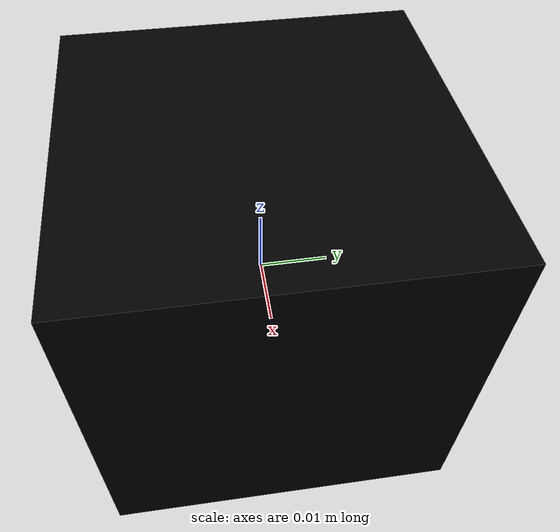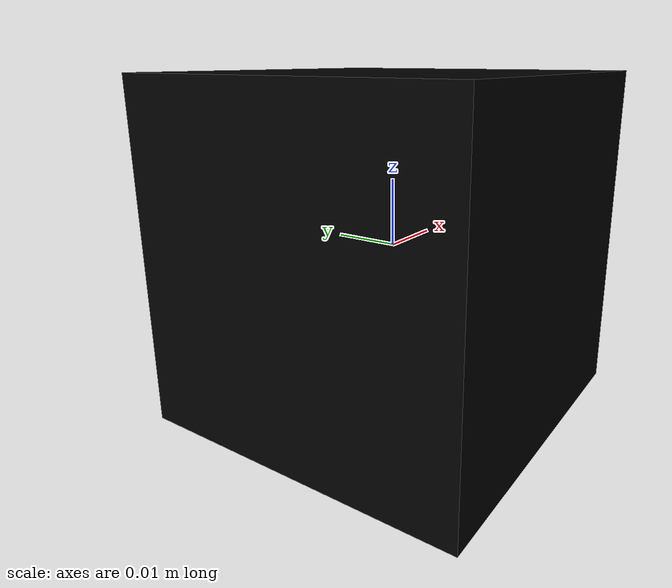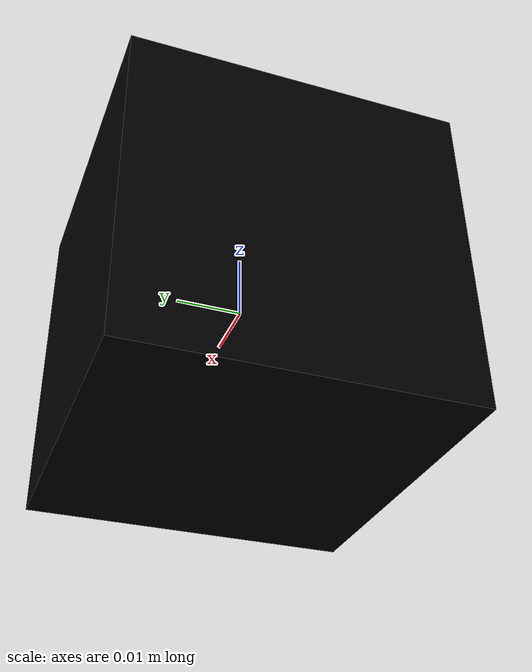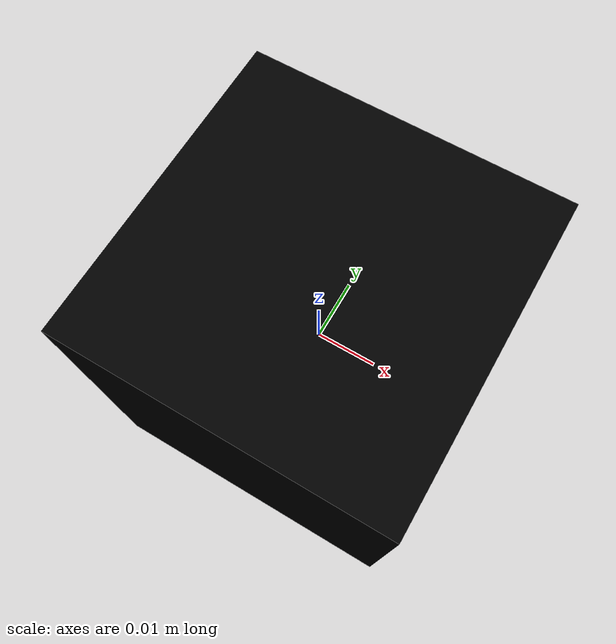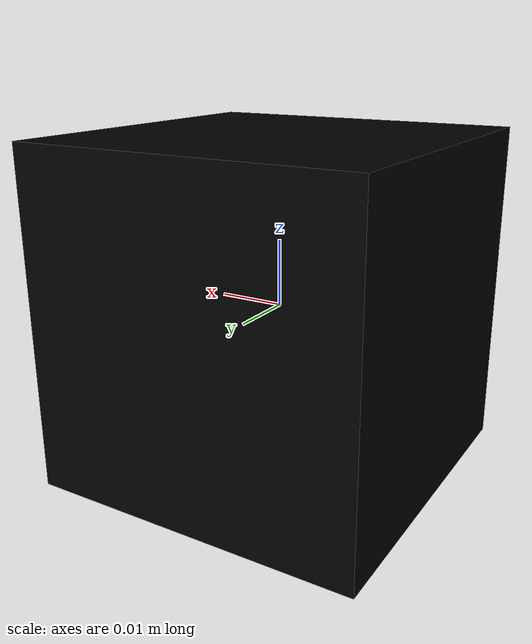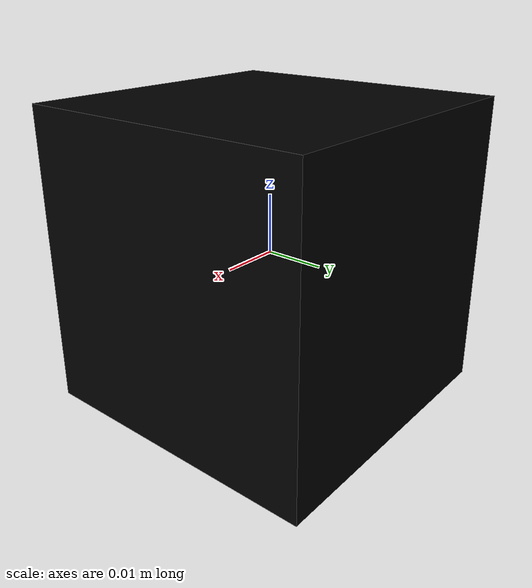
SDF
<?xml version="1.0"?>
<sdf version="1.7">

  <model name="cube">

    <link name="cube">

      <inertial>
        <pose>0 0 0 0 0 0</pose>

        <mass>1.00</mass>

        <inertia>
  <ixx>0.003</ixx>
  <iyy>0.003</iyy>
  <izz>0.006</izz>
  <ixy>0</ixy>
  <ixz>0</ixz>
  <iyz>0</iyz>
</inertia>
      </inertial>

      <visual name="cube_visual">
        <pose>0 0 0 0 0 0</pose>
        <geometry>
  <box>
    <size>0.0508 0.0508 0.0508</size>
  </box>
</geometry>

        <material>
          <diffuse>0 0 0 1</diffuse>
        </material>
      </visual>

      <collision name="cube_collision">
        <pose>0 0 0 0 0 0</pose>

        <geometry>
  <box>
    <size>0.0508 0.0508 0.0508</size>
  </box>
</geometry>

        <drake:proximity_properties xmlns:drake="uri:drake">
          <drake:compliant_hydroelastic/>
          <drake:hydroelastic_modulus>3.0e7</drake:hydroelastic_modulus>
          <drake:mesh_resolution_hint>0.025</drake:mesh_resolution_hint>
          <drake:hunt_crossley_dissipation>10</drake:hunt_crossley_dissipation>
          <drake:mu_dynamic>0.3</drake:mu_dynamic>
        </drake:proximity_properties>
      </collision>

      <!-- Bottom corners used by the controller -->

      <collision name="corner_0">
        <geometry>
          <sphere>
            <radius>0.001</radius>
          </sphere>
        </geometry>

        <drake:proximity_properties>
          <drake:mu_dynamic>0.3</drake:mu_dynamic>
        </drake:proximity_properties>

        <pose>-0.0254 -0.0254 -0.0254 0 0 0</pose>
      </collision>

      <collision name="corner_1">
        <geometry>
          <sphere>
            <radius>0.001</radius>
          </sphere>
        </geometry>

        <drake:proximity_properties>
          <drake:mu_dynamic>0.3</drake:mu_dynamic>
        </drake:proximity_properties>

        <pose>-0.0254 0.0254 -0.0254 0 0 0</pose>
      </collision>

      <collision name="corner_2">
        <geometry>
          <sphere>
            <radius>0.001</radius>
          </sphere>
        </geometry>

        <drake:proximity_properties>
          <drake:mu_dynamic>0.3</drake:mu_dynamic>
        </drake:proximity_properties>

        <pose>0.0254 0.0254 -0.0254 0 0 0</pose>
      </collision>

      <collision name="corner_3">
        <geometry>
          <sphere>
            <radius>0.001</radius>
          </sphere>
        </geometry>

        <drake:proximity_properties>
          <drake:mu_dynamic>0.3</drake:mu_dynamic>
        </drake:proximity_properties>

        <pose>0.0254 -0.0254 -0.0254 0 0 0</pose>
      </collision>

      <collision name="corner_00">
        <geometry>
          <sphere>
            <radius>0.001</radius>
          </sphere>
        </geometry>

        <drake:proximity_properties>
          <drake:mu_dynamic>0.3</drake:mu_dynamic>
        </drake:proximity_properties>

        <pose>-0.0254 -0.0254 0.0254 0 0 0</pose>
      </collision>
      <collision name="corner_11">
        <geometry>
          <sphere>
            <radius>0.001</radius>
          </sphere>
        </geometry>

        <drake:proximity_properties>
          <drake:mu_dynamic>0.3</drake:mu_dynamic>
        </drake:proximity_properties>

        <pose>0.0254 -0.0254 0.0254 0 0 0</pose>
      </collision>
      <collision name="corner_22">
        <geometry>
          <sphere>
            <radius>0.001</radius>
          </sphere>
        </geometry>

        <drake:proximity_properties>
          <drake:mu_dynamic>0.3</drake:mu_dynamic>
        </drake:proximity_properties>

        <pose>0.0254 0.0254 0.0254 0 0 0</pose>
      </collision>
      <collision name="corner_33">
        <geometry>
          <sphere>
            <radius>0.001</radius>
          </sphere>
        </geometry>

        <drake:proximity_properties>
          <drake:mu_dynamic>0.3</drake:mu_dynamic>
        </drake:proximity_properties>

        <pose>-0.0254 0.0254 0.0254 0 0 0</pose>
      </collision>

    </link>

  </model>

</sdf>
